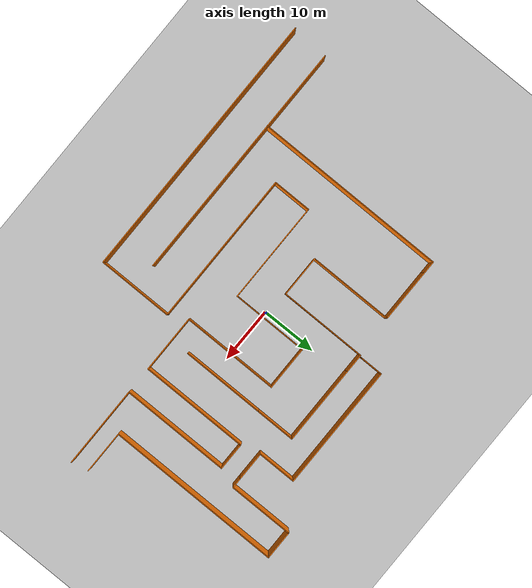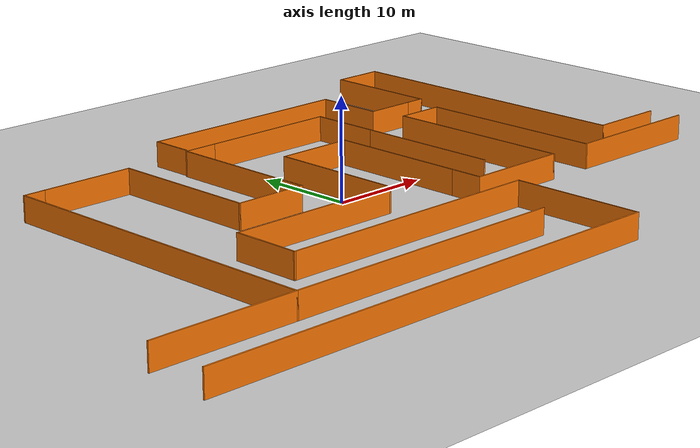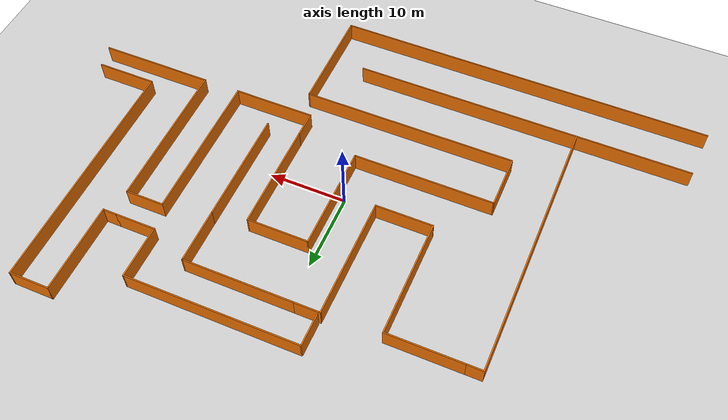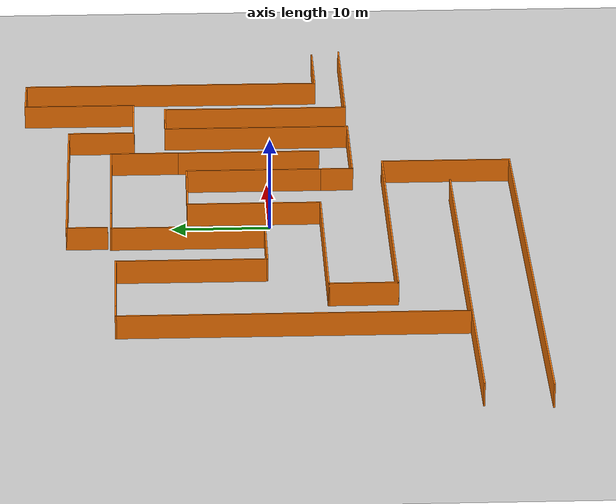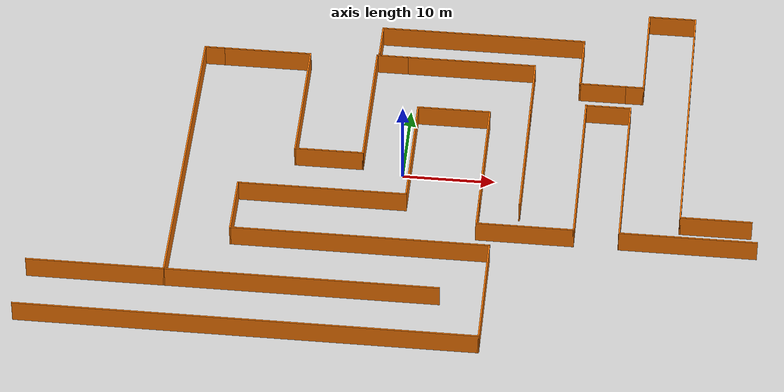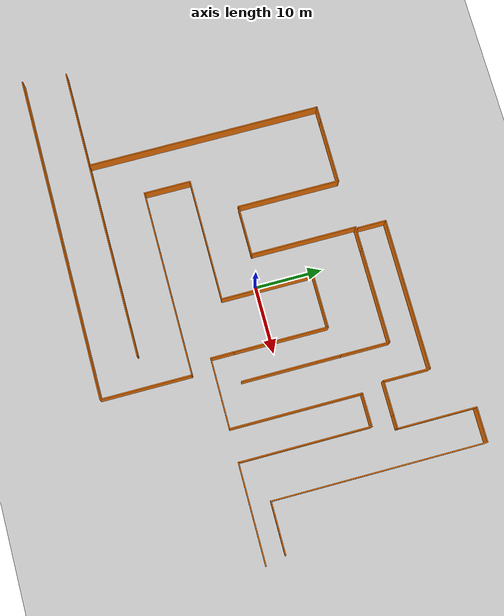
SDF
<sdf version="1.4">
 <world name="default">
  <gravity>0.000000 0.000000 -9.810000</gravity>
  <light name="sun" type="directional">
   <pose>0 0 10 0 -0 0</pose>
   <diffuse>0.8 0.8 0.8 1</diffuse>
   <specular>0.2 0.2 0.2 1</specular>
   <attenuation>
    <range>1000</range>
    <constant>0.9</constant>
    <linear>0.01</linear>
    <quadratic>0.001</quadratic>
   </attenuation>
   <direction>-0.5 0.1 -0.9</direction>
  </light>
  <physics type="ode">
   <real_time_update_rate>1000.0</real_time_update_rate>
   <max_step_size>0.001</max_step_size>
   <real_time_factor>1</real_time_factor>
   <real_time_update_rate>1000</real_time_update_rate>
   <ode>
    <solver>
     <type>quick</type>
     <iters>200</iters>
     <precon_iters>0</precon_iters>
     <sor>1.4</sor>
     <use_dynamic_moi_rescaling>1</use_dynamic_moi_rescaling>
    </solver>
    <constraints>
     <cfm>0.000000</cfm>
     <erp>0.8</erp>
     <contact_max_correcting_vel>2000.000000</contact_max_correcting_vel>
     <contact_surface_layer>0.01000</contact_surface_layer>
    </constraints>
   </ode>
  </physics>
  <include><name>maze</name><uri>model://Maze</uri><pose>0 0 0.01 0 0 0</pose></include>
  <model name="ground_plane">
   <static>1</static>
   <link name="link">
    <collision name="collision">
     <geometry><plane><normal>0 0 1</normal><size>100 100</size></plane></geometry>
     <surface><friction><ode><mu>100</mu><mu2>50</mu2><fdir1>1 0 0</fdir1></ode></friction></surface>
    </collision>
    <visual name="visual">
     <cast_shadows>0</cast_shadows>
     <geometry><plane><normal>0 0 1</normal><size>100 100</size></plane></geometry>
     <material>
      <script><uri>file://media/materials/scripts/gazebo.material</uri><name>Gazebo/Grey</name></script>
     </material>
    </visual>
    <velocity_decay><linear>0</linear><angular>0</angular></velocity_decay>
   </link>
  </model>
  <scene><ambient>0.4 0.4 0.4 1</ambient><background>0.7 0.7 0.7 1</background><shadows>1</shadows></scene>
  <spherical_coordinates>
   <surface_model>EARTH_WGS84</surface_model>
   <latitude_deg>0</latitude_deg>
   <longitude_deg>0</longitude_deg>
   <elevation>0</elevation>
   <heading_deg>0</heading_deg>
  </spherical_coordinates>
 </world>
</sdf>

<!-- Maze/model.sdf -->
<sdf version='1.6'>
  <model name='Maze'>
    <pose frame=''>6.29043 5.3484 0 0 -0 0</pose>
    <link name='Wall_100'>
      <collision name='Wall_100_Collision'>
        <geometry>
          <box>
            <size>7.25 0.15 2.5</size>
          </box>
        </geometry>
        <pose frame=''>0 0 1.25 0 -0 0</pose>
      </collision>
      <visual name='Wall_100_Visual'>
        <pose frame=''>0 0 1.25 0 -0 0</pose>
        <geometry>
          <box>
            <size>7.25 0.15 2.5</size>
          </box>
        </geometry>
        <material>
          <script>
            <uri>file://media/materials/scripts/gazebo.material</uri>
            <name>Gazebo/Grey</name>
          </script>
          <ambient>0.996078 0.47451 0.0196078 1</ambient>
        </material>
        <meta>
          <layer>0</layer>
        </meta>
      </visual>
      <pose frame=''>13.05 12.6653 0 0 -0 1.5708</pose>
    </link>
    <link name='Wall_101'>
      <collision name='Wall_101_Collision'>
        <geometry>
          <box>
            <size>14.25 0.15 2.5</size>
          </box>
        </geometry>
        <pose frame=''>0 0 1.25 0 -0 0</pose>
      </collision>
      <visual name='Wall_101_Visual'>
        <pose frame=''>0 0 1.25 0 -0 0</pose>
        <geometry>
          <box>
            <size>14.25 0.15 2.5</size>
          </box>
        </geometry>
        <material>
          <script>
            <uri>file://media/materials/scripts/gazebo.material</uri>
            <name>Gazebo/Grey</name>
          </script>
          <ambient>0.996078 0.47451 0.0196078 1</ambient>
        </material>
        <meta>
          <layer>0</layer>
        </meta>
      </visual>
      <pose frame=''>6 16.2153 0 0 -0 3.14159</pose>
    </link>
    <link name='Wall_102'>
      <collision name='Wall_102_Collision'>
        <geometry>
          <box>
            <size>3.5 0.15 2.5</size>
          </box>
        </geometry>
        <pose frame=''>0 0 1.25 0 -0 0</pose>
      </collision>
      <visual name='Wall_102_Visual'>
        <pose frame=''>0 0 1.25 0 -0 0</pose>
        <geometry>
          <box>
            <size>3.5 0.15 2.5</size>
          </box>
        </geometry>
        <material>
          <script>
            <uri>file://media/materials/scripts/gazebo.material</uri>
            <name>Gazebo/Grey</name>
          </script>
          <ambient>0.996078 0.47451 0.0196078 1</ambient>
        </material>
        <meta>
          <layer>0</layer>
        </meta>
      </visual>
      <pose frame=''>-2.725 16.2153 0 0 -0 3.14159</pose>
    </link>
    <link name='Wall_103'>
      <collision name='Wall_103_Collision'>
        <geometry>
          <box>
            <size>15.75 0.15 2.5</size>
          </box>
        </geometry>
        <pose frame=''>0 0 1.25 0 -0 0</pose>
      </collision>
      <visual name='Wall_103_Visual'>
        <pose frame=''>0 0 1.25 0 -0 0</pose>
        <geometry>
          <box>
            <size>15.75 0.15 2.5</size>
          </box>
        </geometry>
        <material>
          <script>
            <uri>file://media/materials/scripts/gazebo.material</uri>
            <name>Gazebo/Grey</name>
          </script>
          <ambient>0.996078 0.47451 0.0196078 1</ambient>
        </material>
        <meta>
          <layer>0</layer>
        </meta>
      </visual>
      <pose frame=''>-4.4 8.41528 0 0 -0 -1.5708</pose>
    </link>
    <link name='Wall_104'>
      <collision name='Wall_104_Collision'>
        <geometry>
          <box>
            <size>7.5 0.15 2.5</size>
          </box>
        </geometry>
        <pose frame=''>0 0 1.25 0 -0 0</pose>
      </collision>
      <visual name='Wall_104_Visual'>
        <pose frame=''>0 0 1.25 0 -0 0</pose>
        <geometry>
          <box>
            <size>7.5 0.15 2.5</size>
          </box>
        </geometry>
        <material>
          <script>
            <uri>file://media/materials/scripts/gazebo.material</uri>
            <name>Gazebo/Grey</name>
          </script>
          <ambient>0.996078 0.47451 0.0196078 1</ambient>
        </material>
        <meta>
          <layer>0</layer>
        </meta>
      </visual>
      <pose frame=''>-8.075 0.615279 0 0 -0 3.14159</pose>
    </link>
    <link name='Wall_105'>
      <collision name='Wall_105_Collision'>
        <geometry>
          <box>
            <size>15.25 0.15 2.5</size>
          </box>
        </geometry>
        <pose frame=''>0 0 1.25 0 -0 0</pose>
      </collision>
      <visual name='Wall_105_Visual'>
        <pose frame=''>0 0 1.25 0 -0 0</pose>
        <geometry>
          <box>
            <size>15.25 0.15 2.5</size>
          </box>
        </geometry>
        <material>
          <script>
            <uri>file://media/materials/scripts/gazebo.material</uri>
            <name>Gazebo/Grey</name>
          </script>
          <ambient>0.996078 0.47451 0.0196078 1</ambient>
        </material>
        <meta>
          <layer>0</layer>
        </meta>
      </visual>
      <pose frame=''>-11.75 8.16528 0 0 -0 1.5708</pose>
    </link>
    <link name='Wall_106'>
      <collision name='Wall_106_Collision'>
        <geometry>
          <box>
            <size>9.75 0.15 2.5</size>
          </box>
        </geometry>
        <pose frame=''>0 0 1.25 0 -0 0</pose>
      </collision>
      <visual name='Wall_106_Visual'>
        <pose frame=''>0 0 1.25 0 -0 0</pose>
        <geometry>
          <box>
            <size>9.75 0.15 2.5</size>
          </box>
        </geometry>
        <material>
          <script>
            <uri>file://media/materials/scripts/gazebo.material</uri>
            <name>Gazebo/Grey</name>
          </script>
          <ambient>0.996078 0.47451 0.0196078 1</ambient>
        </material>
        <meta>
          <layer>0</layer>
        </meta>
      </visual>
      <pose frame=''>-16.55 15.7153 0 0 -0 3.14159</pose>
    </link>
    <link name='Wall_107'>
      <collision name='Wall_107_Collision'>
        <geometry>
          <box>
            <size>2.25 0.15 2.5</size>
          </box>
        </geometry>
        <pose frame=''>0 0 1.25 0 -0 0</pose>
      </collision>
      <visual name='Wall_107_Visual'>
        <pose frame=''>0 0 1.25 0 -0 0</pose>
        <geometry>
          <box>
            <size>2.25 0.15 2.5</size>
          </box>
        </geometry>
        <material>
          <script>
            <uri>file://media/materials/scripts/gazebo.material</uri>
            <name>Gazebo/Grey</name>
          </script>
          <ambient>0.996078 0.47451 0.0196078 1</ambient>
        </material>
        <meta>
          <layer>0</layer>
        </meta>
      </visual>
      <pose frame=''>-22.4 15.7153 0 0 -0 3.14159</pose>
    </link>
    <link name='Wall_108'>
      <collision name='Wall_108_Collision'>
        <geometry>
          <box>
            <size>34.75 0.15 2.5</size>
          </box>
        </geometry>
        <pose frame=''>0 0 1.25 0 -0 0</pose>
      </collision>
      <visual name='Wall_108_Visual'>
        <pose frame=''>0 0 1.25 0 -0 0</pose>
        <geometry>
          <box>
            <size>34.75 0.15 2.5</size>
          </box>
        </geometry>
        <material>
          <script>
            <uri>file://media/materials/scripts/gazebo.material</uri>
            <name>Gazebo/Grey</name>
          </script>
          <ambient>0.996078 0.47451 0.0196078 1</ambient>
        </material>
        <meta>
          <layer>0</layer>
        </meta>
      </visual>
      <pose frame=''>-23.45 -1.58472 0 0 -0 -1.5708</pose>
    </link>
    <link name='Wall_109'>
      <collision name='Wall_109_Collision'>
        <geometry>
          <box>
            <size>29.25 0.15 2.5</size>
          </box>
        </geometry>
        <pose frame=''>0 0 1.25 0 -0 0</pose>
      </collision>
      <visual name='Wall_109_Visual'>
        <pose frame=''>0 0 1.25 0 -0 0</pose>
        <geometry>
          <box>
            <size>29.25 0.15 2.5</size>
          </box>
        </geometry>
        <material>
          <script>
            <uri>file://media/materials/scripts/gazebo.material</uri>
            <name>Gazebo/Grey</name>
          </script>
          <ambient>0.996078 0.47451 0.0196078 1</ambient>
        </material>
        <meta>
          <layer>0</layer>
        </meta>
      </visual>
      <pose frame=''>-8.9 -18.8847 0 0 -0 0</pose>
    </link>
    <link name='Wall_113'>
      <collision name='Wall_113_Collision'>
        <geometry>
          <box>
            <size>3.5 0.15 2.5</size>
          </box>
        </geometry>
        <pose frame=''>0 0 1.25 0 -0 0</pose>
      </collision>
      <visual name='Wall_113_Visual'>
        <pose frame=''>0 0 1.25 0 -0 0</pose>
        <geometry>
          <box>
            <size>3.5 0.15 2.5</size>
          </box>
        </geometry>
        <material>
          <script>
            <uri>file://media/materials/scripts/gazebo.material</uri>
            <name>Gazebo/Grey</name>
          </script>
          <ambient>0.996078 0.47451 0.0196078 1</ambient>
        </material>
        <meta>
          <layer>0</layer>
        </meta>
      </visual>
      <pose frame=''>8.7 -7.22502 0 0 -0 -1.5708</pose>
    </link>
    <link name='Wall_114'>
      <collision name='Wall_114_Collision'>
        <geometry>
          <box>
            <size>10.5 0.15 2.5</size>
          </box>
        </geometry>
        <pose frame=''>0 0 1.25 0 -0 0</pose>
      </collision>
      <visual name='Wall_114_Visual'>
        <pose frame=''>0 0 1.25 0 -0 0</pose>
        <geometry>
          <box>
            <size>10.5 0.15 2.5</size>
          </box>
        </geometry>
        <material>
          <script>
            <uri>file://media/materials/scripts/gazebo.material</uri>
            <name>Gazebo/Grey</name>
          </script>
          <ambient>0.996078 0.47451 0.0196078 1</ambient>
        </material>
        <meta>
          <layer>0</layer>
        </meta>
      </visual>
      <pose frame=''>13.875 -8.90002 0 0 -0 0</pose>
    </link>
    <link name='Wall_115'>
      <collision name='Wall_115_Collision'>
        <geometry>
          <box>
            <size>19.5 0.15 2.5</size>
          </box>
        </geometry>
        <pose frame=''>0 0 1.25 0 -0 0</pose>
      </collision>
      <visual name='Wall_115_Visual'>
        <pose frame=''>0 0 1.25 0 -0 0</pose>
        <geometry>
          <box>
            <size>19.5 0.15 2.5</size>
          </box>
        </geometry>
        <material>
          <script>
            <uri>file://media/materials/scripts/gazebo.material</uri>
            <name>Gazebo/Grey</name>
          </script>
          <ambient>0.996078 0.47451 0.0196078 1</ambient>
        </material>
        <meta>
          <layer>0</layer>
        </meta>
      </visual>
      <pose frame=''>19.05 0.774975 0 0 -0 1.5708</pose>
    </link>
    <link name='Wall_116'>
      <collision name='Wall_116_Collision'>
        <geometry>
          <box>
            <size>5 0.15 2.5</size>
          </box>
        </geometry>
        <pose frame=''>0 0 1.25 0 -0 0</pose>
      </collision>
      <visual name='Wall_116_Visual'>
        <pose frame=''>0 0 1.25 0 -0 0</pose>
        <geometry>
          <box>
            <size>5 0.15 2.5</size>
          </box>
        </geometry>
        <material>
          <script>
            <uri>file://media/materials/scripts/gazebo.material</uri>
            <name>Gazebo/Grey</name>
          </script>
          <ambient>0.996078 0.47451 0.0196078 1</ambient>
        </material>
        <meta>
          <layer>0</layer>
        </meta>
      </visual>
      <pose frame=''>21.475 10.45 0 0 -0 0</pose>
    </link>
    <link name='Wall_117'>
      <collision name='Wall_117_Collision'>
        <geometry>
          <box>
            <size>19.5 0.15 2.5</size>
          </box>
        </geometry>
        <pose frame=''>0 0 1.25 0 -0 0</pose>
      </collision>
      <visual name='Wall_117_Visual'>
        <pose frame=''>0 0 1.25 0 -0 0</pose>
        <geometry>
          <box>
            <size>19.5 0.15 2.5</size>
          </box>
        </geometry>
        <material>
          <script>
            <uri>file://media/materials/scripts/gazebo.material</uri>
            <name>Gazebo/Grey</name>
          </script>
          <ambient>0.996078 0.47451 0.0196078 1</ambient>
        </material>
        <meta>
          <layer>0</layer>
        </meta>
      </visual>
      <pose frame=''>23.9 0.774975 0 0 -0 -1.5708</pose>
    </link>
    <link name='Wall_118'>
      <collision name='Wall_118_Collision'>
        <geometry>
          <box>
            <size>14.75 0.15 2.5</size>
          </box>
        </geometry>
        <pose frame=''>0 0 1.25 0 -0 0</pose>
      </collision>
      <visual name='Wall_118_Visual'>
        <pose frame=''>0 0 1.25 0 -0 0</pose>
        <geometry>
          <box>
            <size>14.75 0.15 2.5</size>
          </box>
        </geometry>
        <material>
          <script>
            <uri>file://media/materials/scripts/gazebo.material</uri>
            <name>Gazebo/Grey</name>
          </script>
          <ambient>0.996078 0.47451 0.0196078 1</ambient>
        </material>
        <meta>
          <layer>0</layer>
        </meta>
      </visual>
      <pose frame=''>31.2 -8.90002 0 0 -0 0</pose>
    </link>
    <link name='Wall_120'>
      <collision name='Wall_120_Collision'>
        <geometry>
          <box>
            <size>4.25 0.15 2.5</size>
          </box>
        </geometry>
        <pose frame=''>0 0 1.25 0 -0 0</pose>
      </collision>
      <visual name='Wall_120_Visual'>
        <pose frame=''>0 0 1.25 0 -0 0</pose>
        <geometry>
          <box>
            <size>4.25 0.15 2.5</size>
          </box>
        </geometry>
        <material>
          <script>
            <uri>file://media/materials/scripts/gazebo.material</uri>
            <name>Gazebo/Grey</name>
          </script>
          <ambient>0.996078 0.47451 0.0196078 1</ambient>
        </material>
        <meta>
          <layer>0</layer>
        </meta>
      </visual>
      <pose frame=''>-4.19132 18.6347 0 0 -0 1.5708</pose>
    </link>
    <link name='Wall_121'>
      <collision name='Wall_121_Collision'>
        <geometry>
          <box>
            <size>22.5 0.15 2.5</size>
          </box>
        </geometry>
        <pose frame=''>0 0 1.25 0 -0 0</pose>
      </collision>
      <visual name='Wall_121_Visual'>
        <pose frame=''>0 0 1.25 0 -0 0</pose>
        <geometry>
          <box>
            <size>22.5 0.15 2.5</size>
          </box>
        </geometry>
        <material>
          <script>
            <uri>file://media/materials/scripts/gazebo.material</uri>
            <name>Gazebo/Grey</name>
          </script>
          <ambient>0.996078 0.47451 0.0196078 1</ambient>
        </material>
        <meta>
          <layer>0</layer>
        </meta>
      </visual>
      <pose frame=''>6.98368 20.6847 0 0 -0 0</pose>
    </link>
    <link name='Wall_122'>
      <collision name='Wall_122_Collision'>
        <geometry>
          <box>
            <size>7 0.15 2.5</size>
          </box>
        </geometry>
        <pose frame=''>0 0 1.25 0 -0 0</pose>
      </collision>
      <visual name='Wall_122_Visual'>
        <pose frame=''>0 0 1.25 0 -0 0</pose>
        <geometry>
          <box>
            <size>7 0.15 2.5</size>
          </box>
        </geometry>
        <material>
          <script>
            <uri>file://media/materials/scripts/gazebo.material</uri>
            <name>Gazebo/Grey</name>
          </script>
          <ambient>0.996078 0.47451 0.0196078 1</ambient>
        </material>
        <meta>
          <layer>0</layer>
        </meta>
      </visual>
      <pose frame=''>18.1587 17.2597 0 0 -0 -1.5708</pose>
    </link>
    <link name='Wall_123'>
      <collision name='Wall_123_Collision'>
        <geometry>
          <box>
            <size>5.25 0.15 2.5</size>
          </box>
        </geometry>
        <pose frame=''>0 0 1.25 0 -0 0</pose>
      </collision>
      <visual name='Wall_123_Visual'>
        <pose frame=''>0 0 1.25 0 -0 0</pose>
        <geometry>
          <box>
            <size>5.25 0.15 2.5</size>
          </box>
        </geometry>
        <material>
          <script>
            <uri>file://media/materials/scripts/gazebo.material</uri>
            <name>Gazebo/Grey</name>
          </script>
          <ambient>0.996078 0.47451 0.0196078 1</ambient>
        </material>
        <meta>
          <layer>0</layer>
        </meta>
      </visual>
      <pose frame=''>20.7087 13.8347 0 0 -0 0</pose>
    </link>
    <link name='Wall_124'>
      <collision name='Wall_124_Collision'>
        <geometry>
          <box>
            <size>2 0.15 2.5</size>
          </box>
        </geometry>
        <pose frame=''>0 0 1.25 0 -0 0</pose>
      </collision>
      <visual name='Wall_124_Visual'>
        <pose frame=''>0 0 1.25 0 -0 0</pose>
        <geometry>
          <box>
            <size>2 0.15 2.5</size>
          </box>
        </geometry>
        <material>
          <script>
            <uri>file://media/materials/scripts/gazebo.material</uri>
            <name>Gazebo/Grey</name>
          </script>
          <ambient>0.996078 0.47451 0.0196078 1</ambient>
        </material>
        <meta>
          <layer>0</layer>
        </meta>
      </visual>
      <pose frame=''>24.1837 13.8347 0 0 -0 0</pose>
    </link>
    <link name='Wall_125'>
      <collision name='Wall_125_Collision'>
        <geometry>
          <box>
            <size>11.75 0.15 2.5</size>
          </box>
        </geometry>
        <pose frame=''>0 0 1.25 0 -0 0</pose>
      </collision>
      <visual name='Wall_125_Visual'>
        <pose frame=''>0 0 1.25 0 -0 0</pose>
        <geometry>
          <box>
            <size>11.75 0.15 2.5</size>
          </box>
        </geometry>
        <material>
          <script>
            <uri>file://media/materials/scripts/gazebo.material</uri>
            <name>Gazebo/Grey</name>
          </script>
          <ambient>0.996078 0.47451 0.0196078 1</ambient>
        </material>
        <meta>
          <layer>0</layer>
        </meta>
      </visual>
      <pose frame=''>25.1087 19.6347 0 0 -0 1.5708</pose>
    </link>
    <link name='Wall_126'>
      <collision name='Wall_126_Collision'>
        <geometry>
          <box>
            <size>5.25 0.15 2.5</size>
          </box>
        </geometry>
        <pose frame=''>0 0 1.25 0 -0 0</pose>
      </collision>
      <visual name='Wall_126_Visual'>
        <pose frame=''>0 0 1.25 0 -0 0</pose>
        <geometry>
          <box>
            <size>5.25 0.15 2.5</size>
          </box>
        </geometry>
        <material>
          <script>
            <uri>file://media/materials/scripts/gazebo.material</uri>
            <name>Gazebo/Grey</name>
          </script>
          <ambient>0.996078 0.47451 0.0196078 1</ambient>
        </material>
        <meta>
          <layer>0</layer>
        </meta>
      </visual>
      <pose frame=''>27.6587 25.4347 0 0 -0 0</pose>
    </link>
    <link name='Wall_127'>
      <collision name='Wall_127_Collision'>
        <geometry>
          <box>
            <size>31.5 0.15 2.5</size>
          </box>
        </geometry>
        <pose frame=''>0 0 1.25 0 -0 0</pose>
      </collision>
      <visual name='Wall_127_Visual'>
        <pose frame=''>0 0 1.25 0 -0 0</pose>
        <geometry>
          <box>
            <size>31.5 0.15 2.5</size>
          </box>
        </geometry>
        <material>
          <script>
            <uri>file://media/materials/scripts/gazebo.material</uri>
            <name>Gazebo/Grey</name>
          </script>
          <ambient>0.996078 0.47451 0.0196078 1</ambient>
        </material>
        <meta>
          <layer>0</layer>
        </meta>
      </visual>
      <pose frame=''>30.2087 9.75972 0 0 -0 -1.5708</pose>
    </link>
    <link name='Wall_128'>
      <collision name='Wall_128_Collision'>
        <geometry>
          <box>
            <size>7.75 0.15 2.5</size>
          </box>
        </geometry>
        <pose frame=''>0 0 1.25 0 -0 0</pose>
      </collision>
      <visual name='Wall_128_Visual'>
        <pose frame=''>0 0 1.25 0 -0 0</pose>
        <geometry>
          <box>
            <size>7.75 0.15 2.5</size>
          </box>
        </geometry>
        <material>
          <script>
            <uri>file://media/materials/scripts/gazebo.material</uri>
            <name>Gazebo/Grey</name>
          </script>
          <ambient>0.996078 0.47451 0.0196078 1</ambient>
        </material>
        <meta>
          <layer>0</layer>
        </meta>
      </visual>
      <pose frame=''>34.0087 -5.91528 0 0 -0 0</pose>
    </link>
    <link name='Wall_133'>
      <collision name='Wall_133_Collision'>
        <geometry>
          <box>
            <size>14.75 0.15 2.5</size>
          </box>
        </geometry>
        <pose frame=''>0 0 1.25 0 -0 0</pose>
      </collision>
      <visual name='Wall_133_Visual'>
        <pose frame=''>0 0 1.25 0 -0 0</pose>
        <geometry>
          <box>
            <size>14.75 0.15 2.5</size>
          </box>
        </geometry>
        <material>
          <script>
            <uri>file://media/materials/scripts/gazebo.material</uri>
            <name>Gazebo/Grey</name>
          </script>
          <ambient>0.996078 0.47451 0.0196078 1</ambient>
        </material>
        <meta>
          <layer>0</layer>
        </meta>
      </visual>
      <pose frame=''>-30.75 -18.8847 0 0 -0 3.14159</pose>
    </link>
    <link name='Wall_90'>
      <collision name='Wall_90_Collision'>
        <geometry>
          <box>
            <size>49 0.15 2.5</size>
          </box>
        </geometry>
        <pose frame=''>0 0 1.25 0 -0 0</pose>
      </collision>
      <visual name='Wall_90_Visual'>
        <pose frame=''>0 0 1.25 0 -0 0</pose>
        <geometry>
          <box>
            <size>49 0.15 2.5</size>
          </box>
        </geometry>
        <material>
          <script>
            <uri>file://media/materials/scripts/gazebo.material</uri>
            <name>Gazebo/Grey</name>
          </script>
          <ambient>0.996078 0.47451 0.0196078 1</ambient>
        </material>
        <meta>
          <layer>0</layer>
        </meta>
      </visual>
      <pose frame=''>-14.075 -25.4347 0 0 -0 0</pose>
    </link>
    <link name='Wall_91'>
      <collision name='Wall_91_Collision'>
        <geometry>
          <box>
            <size>13.5 0.15 2.5</size>
          </box>
        </geometry>
        <pose frame=''>0 0 1.25 0 -0 0</pose>
      </collision>
      <visual name='Wall_91_Visual'>
        <pose frame=''>0 0 1.25 0 -0 0</pose>
        <geometry>
          <box>
            <size>13.5 0.15 2.5</size>
          </box>
        </geometry>
        <material>
          <script>
            <uri>file://media/materials/scripts/gazebo.material</uri>
            <name>Gazebo/Grey</name>
          </script>
          <ambient>0.996078 0.47451 0.0196078 1</ambient>
        </material>
        <meta>
          <layer>0</layer>
        </meta>
      </visual>
      <pose frame=''>10.35 -18.7597 0 0 -0 1.5708</pose>
    </link>
    <link name='Wall_92'>
      <collision name='Wall_92_Collision'>
        <geometry>
          <box>
            <size>27.75 0.15 2.5</size>
          </box>
        </geometry>
        <pose frame=''>0 0 1.25 0 -0 0</pose>
      </collision>
      <visual name='Wall_92_Visual'>
        <pose frame=''>0 0 1.25 0 -0 0</pose>
        <geometry>
          <box>
            <size>27.75 0.15 2.5</size>
          </box>
        </geometry>
        <material>
          <script>
            <uri>file://media/materials/scripts/gazebo.material</uri>
            <name>Gazebo/Grey</name>
          </script>
          <ambient>0.996078 0.47451 0.0196078 1</ambient>
        </material>
        <meta>
          <layer>0</layer>
        </meta>
      </visual>
      <pose frame=''>-3.45 -12.0847 0 0 -0 3.14159</pose>
    </link>
    <link name='Wall_93'>
      <collision name='Wall_93_Collision'>
        <geometry>
          <box>
            <size>7 0.15 2.5</size>
          </box>
        </geometry>
        <pose frame=''>0 0 1.25 0 -0 0</pose>
      </collision>
      <visual name='Wall_93_Visual'>
        <pose frame=''>0 0 1.25 0 -0 0</pose>
        <geometry>
          <box>
            <size>7 0.15 2.5</size>
          </box>
        </geometry>
        <material>
          <script>
            <uri>file://media/materials/scripts/gazebo.material</uri>
            <name>Gazebo/Grey</name>
          </script>
          <ambient>0.996078 0.47451 0.0196078 1</ambient>
        </material>
        <meta>
          <layer>0</layer>
        </meta>
      </visual>
      <pose frame=''>-17.25 -8.65972 0 0 -0 1.5708</pose>
    </link>
    <link name='Wall_94'>
      <collision name='Wall_94_Collision'>
        <geometry>
          <box>
            <size>18.25 0.15 2.5</size>
          </box>
        </geometry>
        <pose frame=''>0 0 1.25 0 -0 0</pose>
      </collision>
      <visual name='Wall_94_Visual'>
        <pose frame=''>0 0 1.25 0 -0 0</pose>
        <geometry>
          <box>
            <size>18.25 0.15 2.5</size>
          </box>
        </geometry>
        <material>
          <script>
            <uri>file://media/materials/scripts/gazebo.material</uri>
            <name>Gazebo/Grey</name>
          </script>
          <ambient>0.996078 0.47451 0.0196078 1</ambient>
        </material>
        <meta>
          <layer>0</layer>
        </meta>
      </visual>
      <pose frame=''>-8.2 -5.23472 0 0 -0 0</pose>
    </link>
    <link name='Wall_95'>
      <collision name='Wall_95_Collision'>
        <geometry>
          <box>
            <size>13.75 0.15 2.5</size>
          </box>
        </geometry>
        <pose frame=''>0 0 1.25 0 -0 0</pose>
      </collision>
      <visual name='Wall_95_Visual'>
        <pose frame=''>0 0 1.25 0 -0 0</pose>
        <geometry>
          <box>
            <size>13.75 0.15 2.5</size>
          </box>
        </geometry>
        <material>
          <script>
            <uri>file://media/materials/scripts/gazebo.material</uri>
            <name>Gazebo/Grey</name>
          </script>
          <ambient>0.996078 0.47451 0.0196078 1</ambient>
        </material>
        <meta>
          <layer>0</layer>
        </meta>
      </visual>
      <pose frame=''>0.85 1.56528 0 0 -0 1.5708</pose>
    </link>
    <link name='Wall_96'>
      <collision name='Wall_96_Collision'>
        <geometry>
          <box>
            <size>8 0.15 2.5</size>
          </box>
        </geometry>
        <pose frame=''>0 0 1.25 0 -0 0</pose>
      </collision>
      <visual name='Wall_96_Visual'>
        <pose frame=''>0 0 1.25 0 -0 0</pose>
        <geometry>
          <box>
            <size>8 0.15 2.5</size>
          </box>
        </geometry>
        <material>
          <script>
            <uri>file://media/materials/scripts/gazebo.material</uri>
            <name>Gazebo/Grey</name>
          </script>
          <ambient>0.996078 0.47451 0.0196078 1</ambient>
        </material>
        <meta>
          <layer>0</layer>
        </meta>
      </visual>
      <pose frame=''>4.775 8.36528 0 0 -0 0</pose>
    </link>
    <link name='Wall_97'>
      <collision name='Wall_97_Collision'>
        <geometry>
          <box>
            <size>14.0654 0.15 2.5</size>
          </box>
        </geometry>
        <pose frame=''>0 0 1.25 0 -0 0</pose>
      </collision>
      <visual name='Wall_97_Visual'>
        <pose frame=''>0 0 1.25 0 -0 0</pose>
        <geometry>
          <box>
            <size>14.0654 0.15 2.5</size>
          </box>
        </geometry>
        <material>
          <script>
            <uri>file://media/materials/scripts/gazebo.material</uri>
            <name>Gazebo/Grey</name>
          </script>
          <ambient>0.996078 0.47451 0.0196078 1</ambient>
        </material>
        <meta>
          <layer>0</layer>
        </meta>
      </visual>
      <pose frame=''>8.7 1.40763 0 0 -0 -1.5708</pose>
    </link>
    <link name='Wall_99'>
      <collision name='Wall_99_Collision'>
        <geometry>
          <box>
            <size>14.8154 0.15 2.5</size>
          </box>
        </geometry>
        <pose frame=''>0 0 1.25 0 -0 0</pose>
      </collision>
      <visual name='Wall_99_Visual'>
        <pose frame=''>0 0 1.25 0 -0 0</pose>
        <geometry>
          <box>
            <size>14.8154 0.15 2.5</size>
          </box>
        </geometry>
        <material>
          <script>
            <uri>file://media/materials/scripts/gazebo.material</uri>
            <name>Gazebo/Grey</name>
          </script>
          <ambient>0.996078 0.47451 0.0196078 1</ambient>
        </material>
        <meta>
          <layer>0</layer>
        </meta>
      </visual>
      <pose frame=''>13.05 1.78263 0 0 -0 1.5708</pose>
    </link>
    <static>1</static>
  </model>
</sdf>
